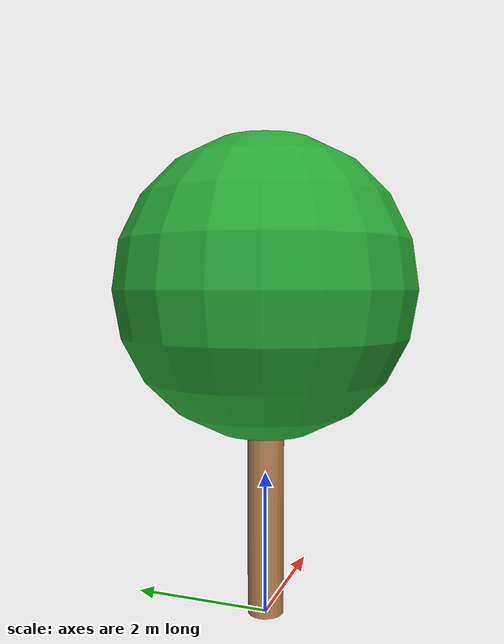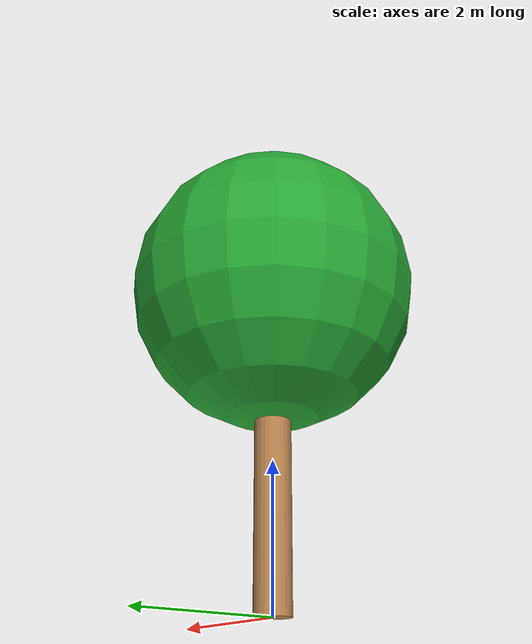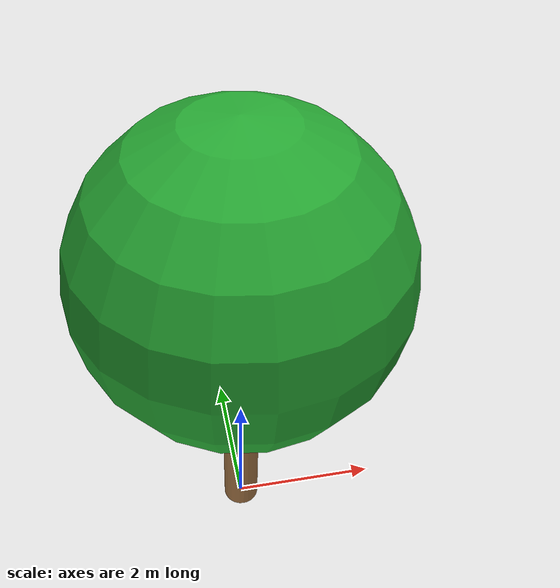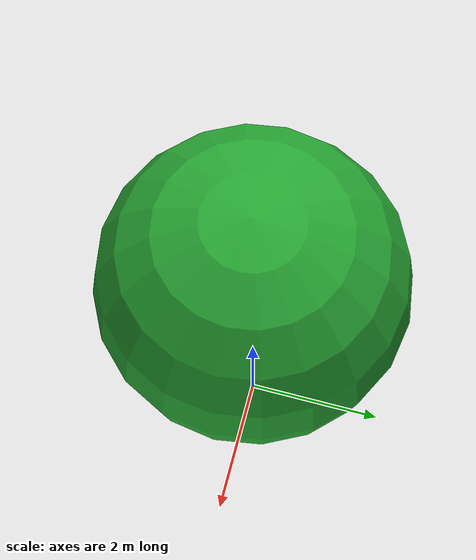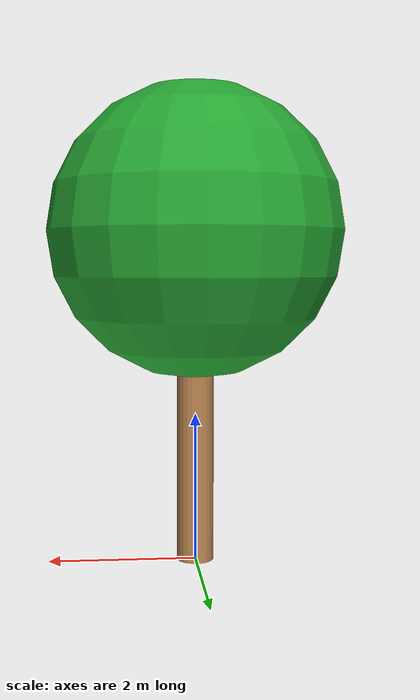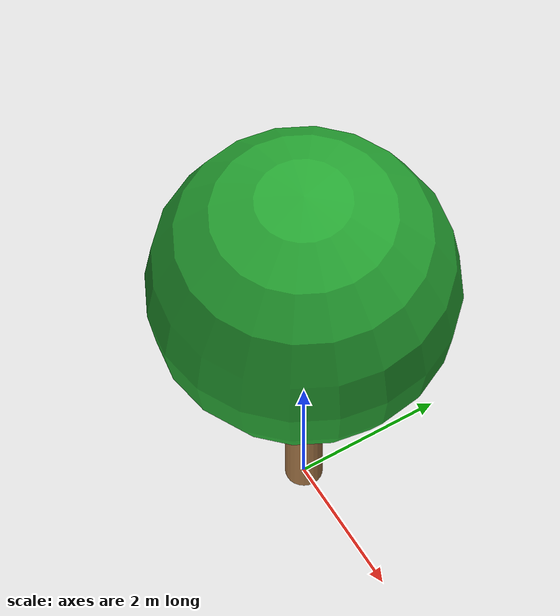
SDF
<?xml version="1.0" ?>
<sdf version="1.6">
  <model name="campus_tree">
    <static>true</static>
    <link name="link">
      <collision name="collision_trunk">
        <pose>0 0 1.5 0 0 0</pose>
        <geometry>
          <cylinder>
            <radius>0.25</radius>
            <length>3.0</length>
          </cylinder>
        </geometry>
      </collision>
      <collision name="collision_canopy">
        <pose>0 0 4.5 0 0 0</pose>
        <geometry>
          <sphere>
            <radius>2.0</radius>
          </sphere>
        </geometry>
      </collision>
      <visual name="visual_trunk">
        <pose>0 0 1.5 0 0 0</pose>
        <geometry>
          <cylinder>
            <radius>0.25</radius>
            <length>3.0</length>
          </cylinder>
        </geometry>
        <material>
          <script>
            <uri>file://media/materials/scripts/gazebo.material</uri>
            <name>Gazebo/Wood</name>
          </script>
        </material>
      </visual>
      <visual name="visual_canopy">
        <pose>0 0 4.5 0 0 0</pose>
        <geometry>
          <sphere>
            <radius>2.0</radius>
          </sphere>
        </geometry>
        <material>
          <script>
            <uri>file://media/materials/scripts/gazebo.material</uri>
            <name>Gazebo/Green</name>
          </script>
        </material>
      </visual>
    </link>
  </model>
</sdf>
